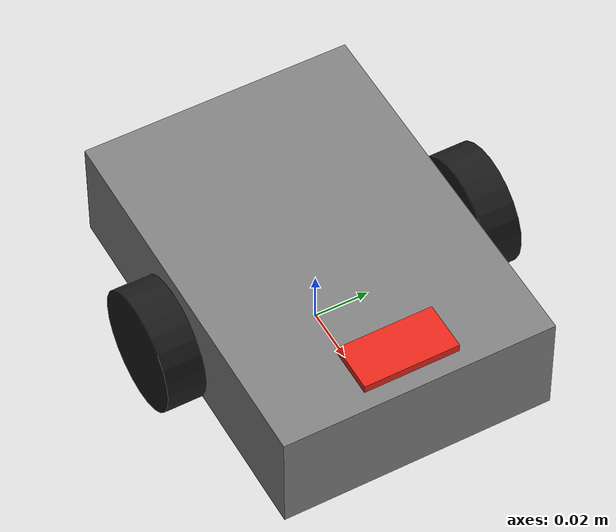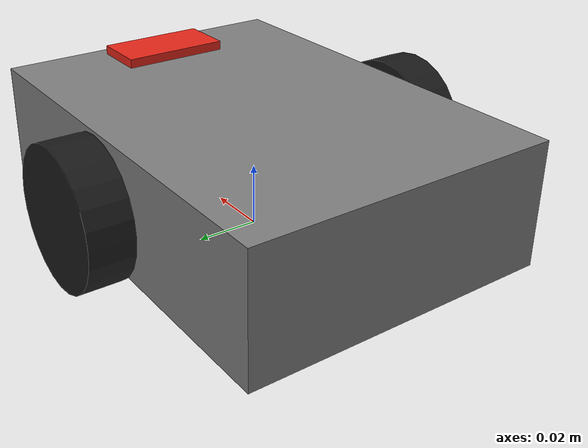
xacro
<?xml version="1.0"?>
<robot name="robot_base" xmlns:xacro="http://www.ros.org/wiki/xacro">

  <xacro:property name="wheel_radius" value="0.021933" />
  <xacro:property name="wheel_width" value="0.014" />
  <xacro:property name="wheel_separation" value="0.119528" />

  <xacro:property name="body_length" value="0.14" />
  <xacro:property name="body_width" value="0.10" />
  <xacro:property name="body_height" value="0.04" />
  <xacro:property name="body_z" value="${wheel_radius}" />

  <xacro:property name="caster_radius" value="0.012" />
  <xacro:property name="caster_x" value="${-body_length/2 + caster_radius}" />
  <xacro:property name="caster_z" value="${wheel_radius - caster_radius}" />

  <material name="chassis_grey">
    <color rgba="0.5 0.5 0.5 1.0" />
  </material>
  <material name="wheel_black">
    <color rgba="0.1 0.1 0.1 1.0" />
  </material>
  <material name="front_red">
    <color rgba="0.9 0.15 0.1 1.0" />
  </material>

  <link name="base_link">
    <visual>
      <origin xyz="0 0 ${body_z}" rpy="0 0 0" />
      <geometry>
        <box size="${body_length} ${body_width} ${body_height}" />
      </geometry>
      <material name="chassis_grey" />
    </visual>
    <collision>
      <origin xyz="0 0 ${body_z}" rpy="0 0 0" />
      <geometry>
        <box size="${body_length} ${body_width} ${body_height}" />
      </geometry>
    </collision>
  </link>

  <!-- A visible front marker makes heading clear from directly above. -->
  <link name="front_marker">
    <visual>
      <geometry>
        <box size="0.018 0.035 0.003" />
      </geometry>
      <material name="front_red" />
    </visual>
  </link>
  <joint name="front_marker_joint" type="fixed">
    <parent link="base_link" />
    <child link="front_marker" />
    <origin xyz="0.055 0 ${wheel_radius + body_height / 2 + 0.002}" rpy="0 0 0" />
  </joint>

  <xacro:macro name="wheel" params="prefix y_sign">
    <link name="${prefix}_wheel">
      <visual>
        <origin xyz="0 0 0" rpy="${pi/2} 0 0" />
        <geometry>
          <cylinder radius="${wheel_radius}" length="${wheel_width}" />
        </geometry>
        <material name="wheel_black" />
      </visual>
      <collision>
        <origin xyz="0 0 0" rpy="${pi/2} 0 0" />
        <geometry>
          <cylinder radius="${wheel_radius}" length="${wheel_width}" />
        </geometry>
      </collision>
    </link>
    <joint name="${prefix}_wheel_joint" type="fixed">
      <parent link="base_link" />
      <child link="${prefix}_wheel" />
      <origin xyz="0 ${y_sign * wheel_separation / 2} ${wheel_radius}" rpy="0 0 0" />
    </joint>
  </xacro:macro>

  <xacro:wheel prefix="left" y_sign="1" />
  <xacro:wheel prefix="right" y_sign="-1" />

  <link name="caster">
    <visual>
      <geometry>
        <sphere radius="${caster_radius}" />
      </geometry>
      <material name="wheel_black" />
    </visual>
    <collision>
      <geometry>
        <sphere radius="${caster_radius}" />
      </geometry>
    </collision>
  </link>
  <joint name="caster_joint" type="fixed">
    <parent link="base_link" />
    <child link="caster" />
    <origin xyz="${caster_x} 0 ${caster_z}" rpy="0 0 0" />
  </joint>

</robot>
